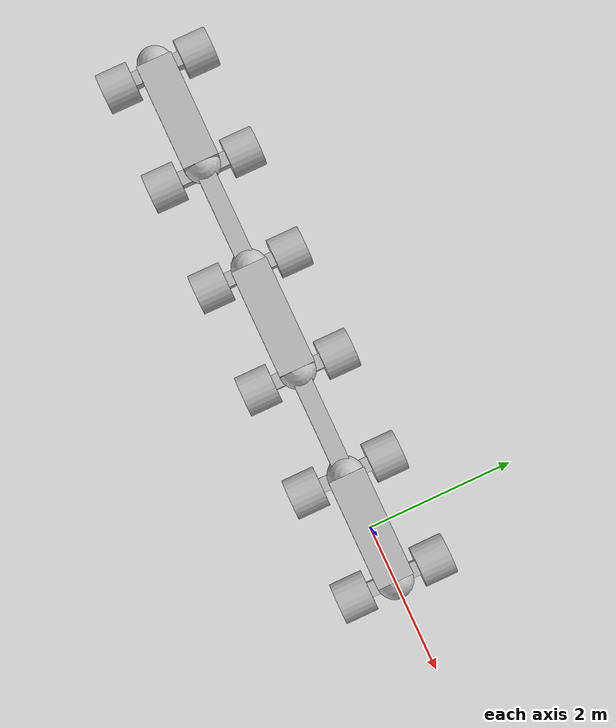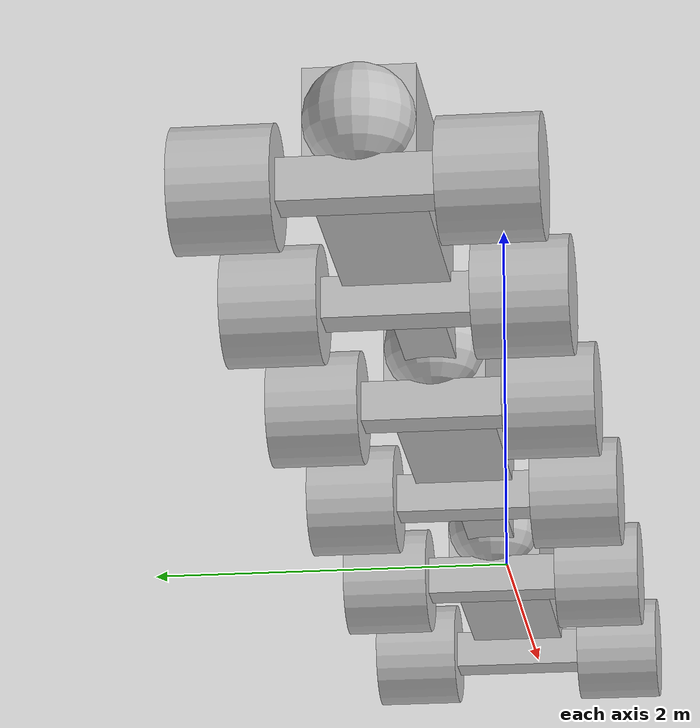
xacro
<?xml version='1.0'?>
<robot xmlns:xacro="http://www.ros.org/wiki/xacro" name="train3">

 <xacro:property name="axel_offset" value="0.75" />
 <xacro:property name="axel_offset2" value="-0.75" />
 <xacro:property name="axel_z_offset" value="-0.3" />

 <xacro:property name="connector_x" value="1.5" />
 <xacro:property name="connector_y" value="0.25" />
 <xacro:property name="connector_z" value="0.25" />
 <xacro:property name="connector_mass" value="5" />

 <xacro:property name="body_x" value="1.5" />
 <xacro:property name="body_y" value="0.5" />
 <xacro:property name="body_z" value="0.5" />
 <xacro:property name="body_mass" value="40" />

 <xacro:property name="axle_x" value="0.2" />
 <!-- actual axle y distance -->
 <!--xacro:property name="axle_y" value="1.15052" /-->
 <xacro:property name="axle_y" value="1.15052" />
 <xacro:property name="axle_z" value="0.2" />
 <xacro:property name="axle_mass" value="15" />

 <xacro:property name="dummy_radius" value="0.25" />
  <xacro:property name="pi2" value="1.570796" />

 <xacro:macro name="wheel_gazebo_macro" params="reference">
 <gazebo reference="${reference}">
   <mu1>0</mu1>
   <mu2>0.25</mu2>
   <fdir1>1 0 0</fdir1>
   <!-- contact sensor -->
   <sensor type="contact" name="${reference}_contact_sensor">
     <update_rate>50.0</update_rate>
     <always_on>true</always_on>
     <contact>
       <collision>${reference}_collision</collision>
     </contact>
     <plugin name="lside_bumper_plugin" filename="libgazebo_ros_bumper.so">
       <bumperTopicName>bumper_${reference}</bumperTopicName>
       <frameName>World</frameName>
  </plugin>
   </sensor>
 </gazebo>
 </xacro:macro>

  <xacro:macro name="wheel_macro" params="name model">
    <link name="${name}">
     <inertial>
      <mass value="7.5"/>
      <origin rpy="0 0 0" xyz="0 0 0"/>
      <inertia ixx="0.49" ixy="0" ixz="0" iyy="0.37" iyz="0" izz="0.37"/>
     </inertial>
     <collision>
       <origin xyz="0 0 0" rpy="0 ${pi2} ${pi2}"/>
       <laser_retro>0</laser_retro>
       <max_contacts>10</max_contacts>
       <pose >0 0 0 0 0 0</pose>
       <geometry>
         <cylinder length="0.45" radius="0.28"/>
       </geometry>
     </collision>
     <visual name="visual">
      <origin rpy="0 ${pi2} ${pi2}" xyz="0 0 0"/>
      <geometry>
       <!--mesh filename="package://ros_robotics/meshes/${model}" scale="1 1 1"/-->
       <cylinder length="0.45" radius="0.28"/>
      </geometry>
      <material name="silver">
       <color rgba="0.75 0.75 0.75 1"/>
      </material>
     </visual>
    </link>
    <xacro:wheel_gazebo_macro reference="${name}"/>
  </xacro:macro>

 <xacro:macro name="pivot_joint_macro" params="xyz name parent child">
  <joint name="${name}" type="revolute">
   <parent link="${parent}"/>
   <child link="${child}"/>
   <origin rpy="0 0 0" xyz="${xyz}"/>
   <axis xyz="0  0  1"/>
   <limit effort="1000" lower="-0.35" upper="0.35" velocity="10"/>
   <dynamics damping="10" friction="0"/>
   <!--limit effort="-1" lower="-0.001" upper="0.001" velocity="-1"/-->
  </joint>
  <xacro:trans_macro name="${name}"/>
 </xacro:macro>

 <xacro:macro name="pivot_joint_roll_macro" params="xyz name parent child">
  <joint name="${name}" type="revolute">
   <parent link="${parent}"/>
   <child link="${child}"/>
   <origin rpy="0 0 0" xyz="${xyz}"/>
   <axis xyz="1  0  0"/>
   <limit effort="-1" lower="-0.1" upper="0.1" velocity="-1"/>
   <!--limit effort="-1" lower="-0.001" upper="0.001" velocity="-1"/-->
  </joint>
 </xacro:macro>

 <xacro:macro name="fixed_pivot_joint_macro" params="xyz name parent child">
  <joint name="${name}" type="revolute">
   <parent link="${parent}"/>
   <child link="${child}"/>
   <origin rpy="0 0 0" xyz="${xyz}"/>
   <axis xyz="0  0  1"/>
   <limit effort="-1" lower="-0.001" upper="0.001" velocity="-1"/>
   <!--limit effort="-1" lower="-0.001" upper="0.001" velocity="-1"/-->
  </joint>
  <xacro:trans_macro name="${name}"/>
 </xacro:macro>

<xacro:macro name="body_macro" params="xyz name">
 <link name="${name}">
  <inertial>
   <origin xyz="${xyz}"/>
   <mass value="${body_mass}"/>
   <inertia ixx="${(1/12)*body_mass*(pow(body_z,2) + pow(body_y,2))}" ixy="0" ixz="0" iyy="${(1/12)*body_mass*(pow(body_z,2) + pow(body_x,2))}" iyz="0" izz="${(1/12)*body_mass*(pow(body_x,2) + pow(body_y,2))}"/>
  </inertial>
  <visual name="visual">
   <origin rpy="0 0 0" xyz="${xyz}"/>
   <geometry>
     <box size="${body_x} 0.5 0.5" />
   </geometry>
   <material name="silver">
    <color rgba="0.75 0.75 0.75 1"/>
   </material>
  </visual>
  </link>
 </xacro:macro>

 <xacro:macro name="trans_macro" params="name">
  <transmission name="simple_trans">
   <type>transmission_interface/SimpleTransmission</type>
   <joint name="${name}">
     <hardwareInterface>hardware_interface/EffortJointInterface</hardwareInterface>
   </joint>
   <actuator name="motor_${name}">
     <mechanicalReduction>1</mechanicalReduction>
   </actuator>
  </transmission>
 </xacro:macro>

<xacro:macro name="axle_macro" params="xyz name">
 <link name="${name}">
  <inertial>
   <mass value="${axle_mass}"/>
   <origin rpy="0  0  0" xyz="0  0  0"/>
   <inertia ixx="${(1/12)*axle_mass*(pow(axle_z,2) + pow(axle_y,2))}" ixy="0" ixz="0" iyy="${(1/12)*axle_mass*(pow(axle_z,2) + pow(axle_x,2))}" iyz="0" izz="${(2/12)*axle_mass*(pow(axle_x,2) + pow(axle_y,2))}"/>
  </inertial>
  <visual name="visual">
   <origin rpy="0  0  0" xyz="0 0 0"/>
   <geometry>
    <!--mesh filename="package://ros_robotics/meshes/Front_Axle.STL" scale="1 1 1"/-->
	<box size="${axle_x} ${axle_y} ${axle_z}" />
   </geometry>
   <material name="silver">
    <color rgba="0.75 0.75 0.75 1"/>
   </material>
  </visual>
 </link>
</xacro:macro>

<xacro:macro name="joint_wheel_macro" params="xyz name parent child">
 <joint name="${name}" type="revolute">
  <parent link="${parent}"/>
  <child link="${child}"/>
  <origin rpy="0    0    0" xyz="${xyz}"/>
  <axis xyz="0  1  0"/>
  <dynamics damping="0" friction="0"/>
  <limit effort="200" lower="-1e+16" upper="1e+16" velocity="20"/>
 </joint>
 <xacro:trans_macro name="${name}"/>
</xacro:macro>

<xacro:macro name="body_joint_macro" params="xyz axis name parent child">
  <joint name="${name}" type="revolute">
   <parent link="${parent}"/>
   <child link="${child}"/>
   <origin rpy="0 0 0" xyz="${xyz}"/>
   <axis xyz="${axis}"/>
   <!--limit effort="-1" lower="-1000" upper="1000" velocity="-1"/-->
   <dynamics damping="0.25" friction="0"/>
   <limit effort="1000" lower="-0.3" upper="0.3" velocity="10"/>
   <!--limit effort="1000" lower="-0.001" upper="0.001" velocity="10"/-->
  </joint>
  <xacro:trans_macro name="${name}"/>
</xacro:macro>

 <xacro:macro name="fixed_joint_macro" params="xyz name parent child limit">
  <joint name="${name}" type="prismatic">
   <parent link="${parent}"/>
   <child link="${child}"/>
   <origin rpy="0 0 0" xyz="${xyz}"/>
   <axis xyz="1 0 0"/>
   <dynamics damping="1.0" friction="0"/>
   <limit effort="1000" lower="${-0.001}" upper="${0.001}" velocity="10"/>
  </joint>
 </xacro:macro>

<xacro:macro name="dummy_link_macro" params="xyz name radius">
 <link name="${name}">
  <inertial>
   <mass value="0.001"/>
   <inertia ixx="0" ixy="0" ixz="0" iyy="0" iyz="0" izz="0"/>
  </inertial>
  <visual name="visual">
   <origin rpy="0 0 0" xyz="${xyz}"/>
   <geometry>
     <sphere radius="${radius}"/>
   </geometry>
   <material name="silver">
    <color rgba="0.75 0.75 0.75 1"/>
   </material>
  </visual>
  </link>
 </xacro:macro>

<xacro:macro name="connector_link_macro" params="xyz name">
 <link name="${name}">
  <inertial>
   <mass value="40"/>
   <inertia ixx="${(1/12)*connector_mass*(pow(connector_z,2) + pow(connector_y,2))}" ixy="0" ixz="0" iyy="${(1/12)*connector_mass*(pow(connector_z,2) + pow(connector_x,2))}" iyz="0" izz="${(1/12)*connector_mass*(pow(connector_x,2) + pow(connector_y,2))}"/>
  </inertial>
  <visual name="visual">
   <origin rpy="0 0 0" xyz="${xyz}"/>
   <geometry>
     <box size="${connector_x} ${connector_y} ${connector_z}" />
   </geometry>
   <material name="silver">
    <color rgba="0.75 0.75 0.75 1"/>
   </material>
  </visual>
  </link>
 </xacro:macro>

<!-- body one -->
<xacro:body_macro name="body_1" xyz="0 0 0"/>
<xacro:body_joint_macro name="dummy_joint_front" parent="body_1" child="dummy_link_front" xyz="${+body_x/2} 0 0" axis="0 0 1"/>
<xacro:dummy_link_macro name="dummy_link_front" xyz="0 0 0" radius="${dummy_radius}"/>

<xacro:pivot_joint_macro name="pivot_joint_1_1" parent="body_1" child="pivot_dummy_1_1" xyz="${axel_offset} 0 ${axel_z_offset}"/>
<xacro:dummy_link_macro name="pivot_dummy_1_1" xyz="0 0 0" radius="0.1"/>
<xacro:pivot_joint_roll_macro name="pivot_joint_roll_1_1" parent="pivot_dummy_1_1" child="axle_1_1" xyz="0 0 0"/>
<xacro:axle_macro name="axle_1_1" xyz="0 0 0"/>

<xacro:joint_wheel_macro xyz="0  ${axle_y/2} 0" name="joint_wheel_1_1_1" parent="axle_1_1" child="wheel_1_1_1"/>
<xacro:joint_wheel_macro xyz="0  -${axle_y/2} 0" name="joint_wheel_1_1_2" parent="axle_1_1" child="wheel_1_1_2"/>
<xacro:wheel_macro name="wheel_1_1_1" model="frostyboy_wheel.STL"/>
<xacro:wheel_macro name="wheel_1_1_2" model="frostyboy_wheel.STL"/>

<xacro:pivot_joint_macro name="pivot_joint_1_2" parent="body_1" child="axle_1_2" xyz="${axel_offset2} 0 ${axel_z_offset}"/>
<xacro:axle_macro name="axle_1_2" xyz="0 0 0"/>

<xacro:joint_wheel_macro xyz="0  ${axle_y/2} 0" name="joint_wheel_1_2_1" parent="axle_1_2" child="wheel_1_2_1"/>
<xacro:joint_wheel_macro xyz="0  -${axle_y/2} 0" name="joint_wheel_1_2_2" parent="axle_1_2" child="wheel_1_2_2"/>
<xacro:wheel_macro name="wheel_1_2_1" model="frostyboy_wheel.STL"/>
<xacro:wheel_macro name="wheel_1_2_2" model="frostyboy_wheel.STL"/>

1->2 link

<xacro:body_joint_macro name="body_joint_1_z" parent="body_1" child="dummy_1_1" xyz="${-body_x/2} 0 0" axis="0 0 1"/>
<xacro:dummy_link_macro name="dummy_1_1" xyz="0 0 0" radius="${dummy_radius}"/>
<xacro:body_joint_macro name="body_joint_1_y" parent="dummy_1_1" child="dummy_1_2" xyz="0 0 0" axis="0 1 0"/>
<xacro:dummy_link_macro name="dummy_1_2" xyz="0 0 0" radius="${dummy_radius}"/>
<xacro:body_joint_macro name="body_joint_1_x" parent="dummy_1_2" child="dummy_1_3" xyz="0 0 0" axis="1 0 0"/>
<xacro:dummy_link_macro name="dummy_1_3" xyz="0 0 0" radius="${dummy_radius}"/>

<xacro:fixed_joint_macro name="fixed_joint_0" parent="dummy_1_3" child="connector_1" xyz="${-connector_x/2} 0 0" limit="0.5"/>
<xacro:connector_link_macro name="connector_1" xyz="0 0 0"/>

<xacro:body_joint_macro name="body_joint_12_y" parent="connector_1" child="dummy_1_4" xyz="${-connector_x/2} 0 0" axis="0 1 0"/>
<xacro:dummy_link_macro name="dummy_1_4" xyz="0 0 0" radius="${dummy_radius}"/>
<xacro:body_joint_macro name="body_joint_12_z" parent="dummy_1_4" child="dummy_1_5" xyz="0 0 0" axis="0 0 1"/>
<xacro:dummy_link_macro name="dummy_1_5" xyz="0 0 0" radius="${dummy_radius}"/>
<xacro:fixed_joint_macro name="fixed_joint_1" parent="dummy_1_5" child="body_2" xyz="${-body_x/2} 0 0" limit="0.0001"/>

<xacro:body_macro name="body_2" xyz="0 0 0"/>

<xacro:pivot_joint_macro name="pivot_joint_2_1" parent="body_2" child="pivot_dummy_2_1" xyz="${axel_offset} 0 ${axel_z_offset}"/>
<xacro:dummy_link_macro name="pivot_dummy_2_1" xyz="0 0 0" radius="0.1"/>
<xacro:pivot_joint_roll_macro name="pivot_joint_roll_2_1" parent="pivot_dummy_2_1" child="axle_2_1" xyz="0 0 0"/>
<xacro:axle_macro name="axle_2_1" xyz="0 0 0"/>

<xacro:joint_wheel_macro xyz="0  ${axle_y/2} 0" name="joint_wheel_2_1_1" parent="axle_2_1" child="wheel_2_1_1"/>
<xacro:joint_wheel_macro xyz="0  -${axle_y/2} 0" name="joint_wheel_2_1_2" parent="axle_2_1" child="wheel_2_1_2"/>
<xacro:wheel_macro name="wheel_2_1_1" model="frostyboy_wheel.STL"/>
<xacro:wheel_macro name="wheel_2_1_2" model="frostyboy_wheel.STL"/>

<xacro:pivot_joint_macro name="pivot_joint_2_2" parent="body_2" child="axle_2_2" xyz="${axel_offset2} 0 ${axel_z_offset}"/>
<xacro:axle_macro name="axle_2_2" xyz="0 0 0"/>

<xacro:joint_wheel_macro xyz="0  ${axle_y/2} 0" name="joint_wheel_2_2_1" parent="axle_2_2" child="wheel_2_2_1"/>
<xacro:joint_wheel_macro xyz="0  -${axle_y/2} 0" name="joint_wheel_2_2_2" parent="axle_2_2" child="wheel_2_2_2"/>
<xacro:wheel_macro name="wheel_2_2_1" model="frostyboy_wheel.STL"/>
<xacro:wheel_macro name="wheel_2_2_2" model="frostyboy_wheel.STL"/>

<xacro:body_joint_macro name="body_joint_2_z" parent="body_2" child="dummy_2_1" xyz="${-body_x/2} 0 0" axis="0 0 1"/>
<xacro:dummy_link_macro name="dummy_2_1" xyz="0 0 0" radius="${dummy_radius}"/>
<xacro:body_joint_macro name="body_joint_2_y" parent="dummy_2_1" child="dummy_2_2" xyz="0 0 0" axis="0 1 0"/>
<xacro:dummy_link_macro name="dummy_2_2" xyz="0 0 0" radius="${dummy_radius}"/>
<xacro:body_joint_macro name="body_joint_2_x" parent="dummy_2_2" child="dummy_2_3" xyz="0 0 0" axis="1 0 0"/>
<xacro:dummy_link_macro name="dummy_2_3" xyz="0 0 0" radius="${dummy_radius}"/>

<xacro:fixed_joint_macro name="fixed_joint_2" parent="dummy_2_3" child="connector_2" xyz="${-connector_x/2} 0 0" limit="0.5"/>
<xacro:connector_link_macro name="connector_2" xyz="0 0 0"/>

<xacro:body_joint_macro name="body_joint_22_y" parent="connector_2" child="dummy_2_4" xyz="${-connector_x/2} 0 0" axis="0 1 0"/>
<xacro:dummy_link_macro name="dummy_2_4" xyz="0 0 0" radius="${dummy_radius}"/>
<xacro:body_joint_macro name="body_joint_22_z" parent="dummy_2_4" child="dummy_2_5" xyz="0 0 0" axis="0 0 1"/>
<xacro:dummy_link_macro name="dummy_2_5" xyz="0 0 0" radius="${dummy_radius}"/>
<xacro:fixed_joint_macro name="fixed_joint_3" parent="dummy_2_5" child="body_3" xyz="${-body_x/2} 0 0" limit="0.0001"/>

<xacro:body_macro name="body_3" xyz="0 0 0"/>

<xacro:pivot_joint_macro name="pivot_joint_3_1" parent="body_3" child="pivot_dummy_3_1" xyz="${axel_offset} 0 ${axel_z_offset}"/>
<xacro:dummy_link_macro name="pivot_dummy_3_1" xyz="0 0 0" radius="0.1"/>
<xacro:pivot_joint_roll_macro name="pivot_joint_roll_3_1" parent="pivot_dummy_3_1" child="axle_3_1" xyz="0 0 0"/>
<xacro:axle_macro name="axle_3_1" xyz="0 0 0"/>

<xacro:joint_wheel_macro xyz="0  ${axle_y/2} 0" name="joint_wheel_3_1_1" parent="axle_3_1" child="wheel_3_1_1"/>
<xacro:joint_wheel_macro xyz="0  -${axle_y/2} 0" name="joint_wheel_3_1_2" parent="axle_3_1" child="wheel_3_1_2"/>
<xacro:wheel_macro name="wheel_3_1_1" model="frostyboy_wheel.STL"/>
<xacro:wheel_macro name="wheel_3_1_2" model="frostyboy_wheel.STL"/>

<xacro:pivot_joint_macro name="pivot_joint_3_2" parent="body_3" child="axle_3_2" xyz="${axel_offset2} 0 ${axel_z_offset}"/>
<xacro:axle_macro name="axle_3_2" xyz="0 0 0"/>

<xacro:joint_wheel_macro xyz="0  ${axle_y/2} 0" name="joint_wheel_3_2_1" parent="axle_3_2" child="wheel_3_2_1"/>
<xacro:joint_wheel_macro xyz="0  -${axle_y/2} 0" name="joint_wheel_3_2_2" parent="axle_3_2" child="wheel_3_2_2"/>
<xacro:wheel_macro name="wheel_3_2_1" model="frostyboy_wheel.STL"/>
<xacro:wheel_macro name="wheel_3_2_2" model="frostyboy_wheel.STL"/>

<xacro:body_joint_macro name="dummy_joint_back" parent="body_3" child="dummy_link_back" xyz="${-body_x/2} 0 0" axis="0 0 1"/>
<xacro:dummy_link_macro name="dummy_link_back" xyz="0 0 0" radius="${dummy_radius}"/>

<!-- https://answers.ros.org/question/258420/ball-joint-in-urdf/ -->
<!--check_urdf <(xacro inorder train3_final.urdf.xacro) put two dashes before inorder-->

<gazebo>
  <plugin name="gazebo_ros_control" filename="libgazebo_ros_control.so">
   <robotNamespace>/dd_robot</robotNamespace>
   <robotSimType>gazebo_ros_control/DefaultRobotHWSim</robotSimType>
   <legacyModeNS>true</legacyModeNS>
  </plugin>
</gazebo>

</robot>
